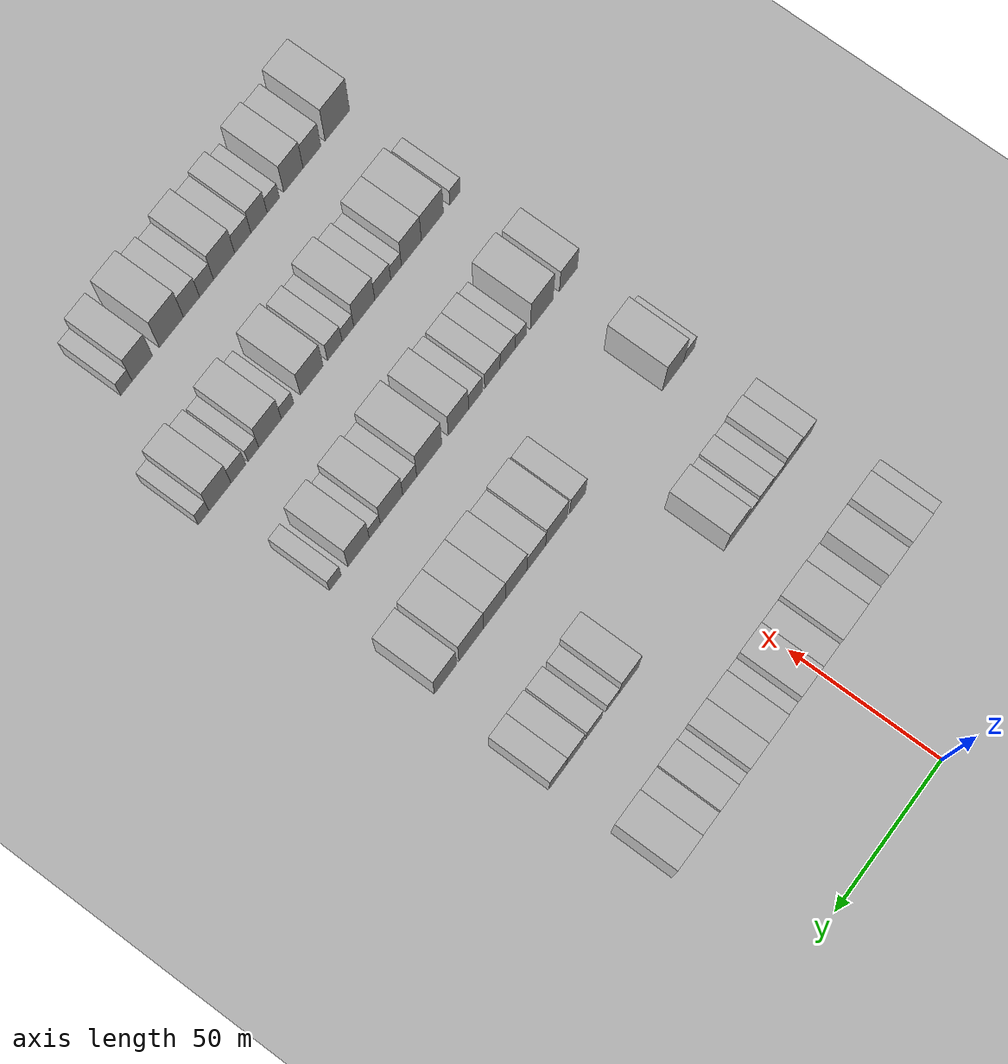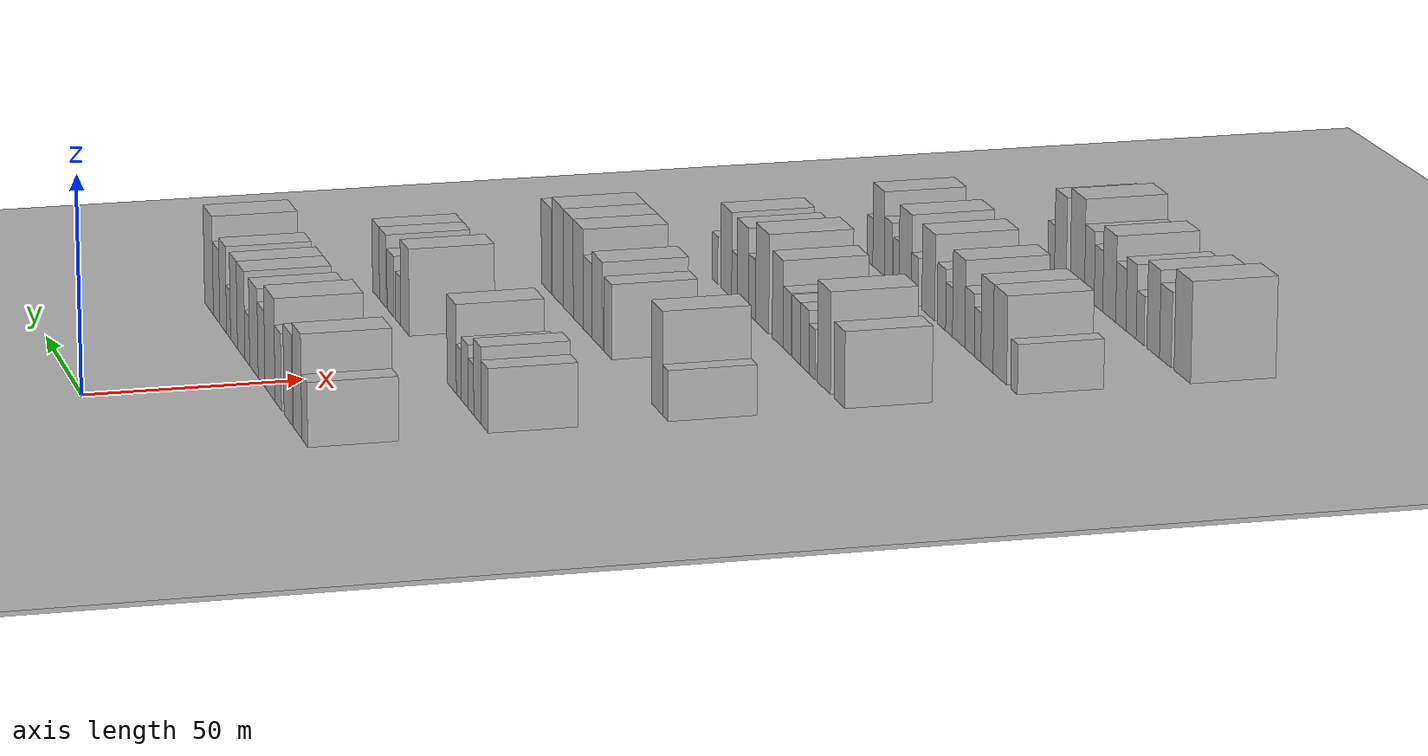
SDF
<sdf version="1.6">
 <world name="default">
  <include><name>ground_plane_1</name><uri>model://HANNAS_ground_plane</uri></include>
  <include>
   <name>ground_plane_2</name>
   <uri>model://HANNAS_ground_plane</uri>
   <pose>100 0 0  0 0 0</pose>
  </include>
  <model name="building_61">
   <static>1</static>
   <pose>50.0000 -51.2786 0 0.000000 0.000000 0.000000</pose>
   <link name="link">
    <pose>0 0 7.50 0 0 0</pose>
    <collision name="collision"><geometry><box><size>20.0000 6.4937 15.0000</size></box></geometry></collision>
    <visual name="visual">
     <cast_shadows>0</cast_shadows>
     <geometry><box><size>20.0000 6.4937 15.0000</size></box></geometry>
     <material>
      <script>
       <uri>model://HANNAS_wall/materials/scripts</uri>
       <uri>model://HANNAS_wall/materials/textures</uri>
       <name>vrc/HANNAS_wall</name>
      </script>
     </material>
    </visual>
   </link>
  </model>
  <model name="building_62">
   <static>1</static>
   <pose>50.0000 -43.2275 0 0.000000 0.000000 0.000000</pose>
   <link name="link">
    <pose>0 0 12.00 0 0 0</pose>
    <collision name="collision"><geometry><box><size>20.0000 9.6084 24.0000</size></box></geometry></collision>
    <visual name="visual">
     <cast_shadows>0</cast_shadows>
     <geometry><box><size>20.0000 9.6084 24.0000</size></box></geometry>
     <material>
      <script>
       <uri>model://HANNAS_wall/materials/scripts</uri>
       <uri>model://HANNAS_wall/materials/textures</uri>
       <name>vrc/HANNAS_wall</name>
      </script>
     </material>
    </visual>
   </link>
  </model>
  <model name="building_63">
   <static>1</static>
   <pose>50.0000 -32.7277 0 0.000000 0.000000 0.000000</pose>
   <link name="link">
    <pose>0 0 10.50 0 0 0</pose>
    <collision name="collision"><geometry><box><size>20.0000 9.3913 21.0000</size></box></geometry></collision>
    <visual name="visual">
     <cast_shadows>0</cast_shadows>
     <geometry><box><size>20.0000 9.3913 21.0000</size></box></geometry>
     <material>
      <script>
       <uri>model://HANNAS_wall/materials/scripts</uri>
       <uri>model://HANNAS_wall/materials/textures</uri>
       <name>vrc/HANNAS_wall</name>
      </script>
     </material>
    </visual>
   </link>
  </model>
  <model name="building_64">
   <static>1</static>
   <pose>50.0000 -21.3808 0 0.000000 0.000000 0.000000</pose>
   <link name="link">
    <pose>0 0 9.00 0 0 0</pose>
    <collision name="collision"><geometry><box><size>20.0000 7.3026 18.0000</size></box></geometry></collision>
    <visual name="visual">
     <cast_shadows>0</cast_shadows>
     <geometry><box><size>20.0000 7.3026 18.0000</size></box></geometry>
     <material>
      <script>
       <uri>model://HANNAS_wall/materials/scripts</uri>
       <uri>model://HANNAS_wall/materials/textures</uri>
       <name>vrc/HANNAS_wall</name>
      </script>
     </material>
    </visual>
   </link>
  </model>
  <model name="building_65">
   <static>1</static>
   <pose>50.0000 -11.8278 0 0.000000 0.000000 0.000000</pose>
   <link name="link">
    <pose>0 0 12.00 0 0 0</pose>
    <collision name="collision"><geometry><box><size>20.0000 11.8033 24.0000</size></box></geometry></collision>
    <visual name="visual">
     <cast_shadows>0</cast_shadows>
     <geometry><box><size>20.0000 11.8033 24.0000</size></box></geometry>
     <material>
      <script>
       <uri>model://HANNAS_wall/materials/scripts</uri>
       <uri>model://HANNAS_wall/materials/textures</uri>
       <name>vrc/HANNAS_wall</name>
      </script>
     </material>
    </visual>
   </link>
  </model>
  <model name="building_66">
   <static>1</static>
   <pose>50.0000 -1.8466 0 0.000000 0.000000 0.000000</pose>
   <link name="link">
    <pose>0 0 9.00 0 0 0</pose>
    <collision name="collision"><geometry><box><size>20.0000 8.1591 18.0000</size></box></geometry></collision>
    <visual name="visual">
     <cast_shadows>0</cast_shadows>
     <geometry><box><size>20.0000 8.1591 18.0000</size></box></geometry>
     <material>
      <script>
       <uri>model://HANNAS_wall/materials/scripts</uri>
       <uri>model://HANNAS_wall/materials/textures</uri>
       <name>vrc/HANNAS_wall</name>
      </script>
     </material>
    </visual>
   </link>
  </model>
  <model name="building_67">
   <static>1</static>
   <pose>50.0000 7.2440 0 0.000000 0.000000 0.000000</pose>
   <link name="link">
    <pose>0 0 10.50 0 0 0</pose>
    <collision name="collision"><geometry><box><size>20.0000 10.0220 21.0000</size></box></geometry></collision>
    <visual name="visual">
     <cast_shadows>0</cast_shadows>
     <geometry><box><size>20.0000 10.0220 21.0000</size></box></geometry>
     <material>
      <script>
       <uri>model://HANNAS_wall/materials/scripts</uri>
       <uri>model://HANNAS_wall/materials/textures</uri>
       <name>vrc/HANNAS_wall</name>
      </script>
     </material>
    </visual>
   </link>
  </model>
  <model name="building_68">
   <static>1</static>
   <pose>50.0000 15.1248 0 0.000000 0.000000 0.000000</pose>
   <link name="link">
    <pose>0 0 6.00 0 0 0</pose>
    <collision name="collision"><geometry><box><size>20.0000 5.7396 12.0000</size></box></geometry></collision>
    <visual name="visual">
     <cast_shadows>0</cast_shadows>
     <geometry><box><size>20.0000 5.7396 12.0000</size></box></geometry>
     <material>
      <script>
       <uri>model://HANNAS_wall/materials/scripts</uri>
       <uri>model://HANNAS_wall/materials/textures</uri>
       <name>vrc/HANNAS_wall</name>
      </script>
     </material>
    </visual>
   </link>
  </model>
  <model name="building_69">
   <static>1</static>
   <pose>50.0000 22.6059 0 0.000000 0.000000 0.000000</pose>
   <link name="link">
    <pose>0 0 10.50 0 0 0</pose>
    <collision name="collision"><geometry><box><size>20.0000 9.2225 21.0000</size></box></geometry></collision>
    <visual name="visual">
     <cast_shadows>0</cast_shadows>
     <geometry><box><size>20.0000 9.2225 21.0000</size></box></geometry>
     <material>
      <script>
       <uri>model://HANNAS_wall/materials/scripts</uri>
       <uri>model://HANNAS_wall/materials/textures</uri>
       <name>vrc/HANNAS_wall</name>
      </script>
     </material>
    </visual>
   </link>
  </model>
  <model name="building_70">
   <static>1</static>
   <pose>50.0000 31.4374 0 0.000000 0.000000 0.000000</pose>
   <link name="link">
    <pose>0 0 10.50 0 0 0</pose>
    <collision name="collision"><geometry><box><size>20.0000 8.4405 21.0000</size></box></geometry></collision>
    <visual name="visual">
     <cast_shadows>0</cast_shadows>
     <geometry><box><size>20.0000 8.4405 21.0000</size></box></geometry>
     <material>
      <script>
       <uri>model://HANNAS_wall/materials/scripts</uri>
       <uri>model://HANNAS_wall/materials/textures</uri>
       <name>vrc/HANNAS_wall</name>
      </script>
     </material>
    </visual>
   </link>
  </model>
  <model name="building_71">
   <static>1</static>
   <pose>50.0000 38.1519 0 0.000000 0.000000 0.000000</pose>
   <link name="link">
    <pose>0 0 6.00 0 0 0</pose>
    <collision name="collision"><geometry><box><size>20.0000 4.9886 12.0000</size></box></geometry></collision>
    <visual name="visual">
     <cast_shadows>0</cast_shadows>
     <geometry><box><size>20.0000 4.9886 12.0000</size></box></geometry>
     <material>
      <script>
       <uri>model://HANNAS_wall/materials/scripts</uri>
       <uri>model://HANNAS_wall/materials/textures</uri>
       <name>vrc/HANNAS_wall</name>
      </script>
     </material>
    </visual>
   </link>
  </model>
  <model name="building_72">
   <static>1</static>
   <pose>50.0000 44.9100 0 0.000000 0.000000 0.000000</pose>
   <link name="link">
    <pose>0 0 10.50 0 0 0</pose>
    <collision name="collision"><geometry><box><size>20.0000 8.5276 21.0000</size></box></geometry></collision>
    <visual name="visual">
     <cast_shadows>0</cast_shadows>
     <geometry><box><size>20.0000 8.5276 21.0000</size></box></geometry>
     <material>
      <script>
       <uri>model://HANNAS_wall/materials/scripts</uri>
       <uri>model://HANNAS_wall/materials/textures</uri>
       <name>vrc/HANNAS_wall</name>
      </script>
     </material>
    </visual>
   </link>
  </model>
  <model name="building_73">
   <static>1</static>
   <pose>50.0000 53.2318 0 0.000000 0.000000 0.000000</pose>
   <link name="link">
    <pose>0 0 9.00 0 0 0</pose>
    <collision name="collision"><geometry><box><size>20.0000 8.1159 18.0000</size></box></geometry></collision>
    <visual name="visual">
     <cast_shadows>0</cast_shadows>
     <geometry><box><size>20.0000 8.1159 18.0000</size></box></geometry>
     <material>
      <script>
       <uri>model://HANNAS_wall/materials/scripts</uri>
       <uri>model://HANNAS_wall/materials/textures</uri>
       <name>vrc/HANNAS_wall</name>
      </script>
     </material>
    </visual>
   </link>
  </model>
  <model name="building_74">
   <static>1</static>
   <pose>50.0000 62.9190 0 0.000000 0.000000 0.000000</pose>
   <link name="link">
    <pose>0 0 12.00 0 0 0</pose>
    <collision name="collision"><geometry><box><size>20.0000 11.2583 24.0000</size></box></geometry></collision>
    <visual name="visual">
     <cast_shadows>0</cast_shadows>
     <geometry><box><size>20.0000 11.2583 24.0000</size></box></geometry>
     <material>
      <script>
       <uri>model://HANNAS_wall/materials/scripts</uri>
       <uri>model://HANNAS_wall/materials/textures</uri>
       <name>vrc/HANNAS_wall</name>
      </script>
     </material>
    </visual>
   </link>
  </model>
  <model name="building_197">
   <static>1</static>
   <pose>90.0000 -49.8313 0 0.000000 0.000000 0.000000</pose>
   <link name="link">
    <pose>0 0 7.50 0 0 0</pose>
    <collision name="collision"><geometry><box><size>20.0000 6.9212 15.0000</size></box></geometry></collision>
    <visual name="visual">
     <cast_shadows>0</cast_shadows>
     <geometry><box><size>20.0000 6.9212 15.0000</size></box></geometry>
     <material>
      <script>
       <uri>model://HANNAS_wall/materials/scripts</uri>
       <uri>model://HANNAS_wall/materials/textures</uri>
       <name>vrc/HANNAS_wall</name>
      </script>
     </material>
    </visual>
   </link>
  </model>
  <model name="building_198">
   <static>1</static>
   <pose>90.0000 -42.6922 0 0.000000 0.000000 0.000000</pose>
   <link name="link">
    <pose>0 0 9.00 0 0 0</pose>
    <collision name="collision"><geometry><box><size>20.0000 7.3571 18.0000</size></box></geometry></collision>
    <visual name="visual">
     <cast_shadows>0</cast_shadows>
     <geometry><box><size>20.0000 7.3571 18.0000</size></box></geometry>
     <material>
      <script>
       <uri>model://HANNAS_wall/materials/scripts</uri>
       <uri>model://HANNAS_wall/materials/textures</uri>
       <name>vrc/HANNAS_wall</name>
      </script>
     </material>
    </visual>
   </link>
  </model>
  <model name="building_199">
   <static>1</static>
   <pose>90.0000 -36.2516 0 0.000000 0.000000 0.000000</pose>
   <link name="link">
    <pose>0 0 6.00 0 0 0</pose>
    <collision name="collision"><geometry><box><size>20.0000 5.5241 12.0000</size></box></geometry></collision>
    <visual name="visual">
     <cast_shadows>0</cast_shadows>
     <geometry><box><size>20.0000 5.5241 12.0000</size></box></geometry>
     <material>
      <script>
       <uri>model://HANNAS_wall/materials/scripts</uri>
       <uri>model://HANNAS_wall/materials/textures</uri>
       <name>vrc/HANNAS_wall</name>
      </script>
     </material>
    </visual>
   </link>
  </model>
  <model name="building_200">
   <static>1</static>
   <pose>90.0000 -30.0562 0 0.000000 0.000000 0.000000</pose>
   <link name="link">
    <pose>0 0 7.50 0 0 0</pose>
    <collision name="collision"><geometry><box><size>20.0000 6.8667 15.0000</size></box></geometry></collision>
    <visual name="visual">
     <cast_shadows>0</cast_shadows>
     <geometry><box><size>20.0000 6.8667 15.0000</size></box></geometry>
     <material>
      <script>
       <uri>model://HANNAS_wall/materials/scripts</uri>
       <uri>model://HANNAS_wall/materials/textures</uri>
       <name>vrc/HANNAS_wall</name>
      </script>
     </material>
    </visual>
   </link>
  </model>
  <model name="building_201">
   <static>1</static>
   <pose>90.0000 -24.0416 0 0.000000 0.000000 0.000000</pose>
   <link name="link">
    <pose>0 0 6.00 0 0 0</pose>
    <collision name="collision"><geometry><box><size>20.0000 5.1624 12.0000</size></box></geometry></collision>
    <visual name="visual">
     <cast_shadows>0</cast_shadows>
     <geometry><box><size>20.0000 5.1624 12.0000</size></box></geometry>
     <material>
      <script>
       <uri>model://HANNAS_wall/materials/scripts</uri>
       <uri>model://HANNAS_wall/materials/textures</uri>
       <name>vrc/HANNAS_wall</name>
      </script>
     </material>
    </visual>
   </link>
  </model>
  <model name="building_202">
   <static>1</static>
   <pose>90.0000 -16.7081 0 0.000000 0.000000 0.000000</pose>
   <link name="link">
    <pose>0 0 10.50 0 0 0</pose>
    <collision name="collision"><geometry><box><size>20.0000 9.5047 21.0000</size></box></geometry></collision>
    <visual name="visual">
     <cast_shadows>0</cast_shadows>
     <geometry><box><size>20.0000 9.5047 21.0000</size></box></geometry>
     <material>
      <script>
       <uri>model://HANNAS_wall/materials/scripts</uri>
       <uri>model://HANNAS_wall/materials/textures</uri>
       <name>vrc/HANNAS_wall</name>
      </script>
     </material>
    </visual>
   </link>
  </model>
  <model name="building_203">
   <static>1</static>
   <pose>90.0000 32.8688 0 0.000000 0.000000 0.000000</pose>
   <link name="link">
    <pose>0 0 10.50 0 0 0</pose>
    <collision name="collision"><geometry><box><size>20.0000 9.2164 21.0000</size></box></geometry></collision>
    <visual name="visual">
     <cast_shadows>0</cast_shadows>
     <geometry><box><size>20.0000 9.2164 21.0000</size></box></geometry>
     <material>
      <script>
       <uri>model://HANNAS_wall/materials/scripts</uri>
       <uri>model://HANNAS_wall/materials/textures</uri>
       <name>vrc/HANNAS_wall</name>
      </script>
     </material>
    </visual>
   </link>
  </model>
  <model name="building_204">
   <static>1</static>
   <pose>90.0000 40.3352 0 0.000000 0.000000 0.000000</pose>
   <link name="link">
    <pose>0 0 6.00 0 0 0</pose>
    <collision name="collision"><geometry><box><size>20.0000 5.7163 12.0000</size></box></geometry></collision>
    <visual name="visual">
     <cast_shadows>0</cast_shadows>
     <geometry><box><size>20.0000 5.7163 12.0000</size></box></geometry>
     <material>
      <script>
       <uri>model://HANNAS_wall/materials/scripts</uri>
       <uri>model://HANNAS_wall/materials/textures</uri>
       <name>vrc/HANNAS_wall</name>
      </script>
     </material>
    </visual>
   </link>
  </model>
  <model name="building_205">
   <static>1</static>
   <pose>90.0000 48.8825 0 0.000000 0.000000 0.000000</pose>
   <link name="link">
    <pose>0 0 7.50 0 0 0</pose>
    <collision name="collision"><geometry><box><size>20.0000 7.3784 15.0000</size></box></geometry></collision>
    <visual name="visual">
     <cast_shadows>0</cast_shadows>
     <geometry><box><size>20.0000 7.3784 15.0000</size></box></geometry>
     <material>
      <script>
       <uri>model://HANNAS_wall/materials/scripts</uri>
       <uri>model://HANNAS_wall/materials/textures</uri>
       <name>vrc/HANNAS_wall</name>
      </script>
     </material>
    </visual>
   </link>
  </model>
  <model name="building_206">
   <static>1</static>
   <pose>90.0000 57.4387 0 0.000000 0.000000 0.000000</pose>
   <link name="link">
    <pose>0 0 9.00 0 0 0</pose>
    <collision name="collision"><geometry><box><size>20.0000 7.7338 18.0000</size></box></geometry></collision>
    <visual name="visual">
     <cast_shadows>0</cast_shadows>
     <geometry><box><size>20.0000 7.7338 18.0000</size></box></geometry>
     <material>
      <script>
       <uri>model://HANNAS_wall/materials/scripts</uri>
       <uri>model://HANNAS_wall/materials/textures</uri>
       <name>vrc/HANNAS_wall</name>
      </script>
     </material>
    </visual>
   </link>
  </model>
  <model name="building_207">
   <static>1</static>
   <pose>90.0000 65.2648 0 0.000000 0.000000 0.000000</pose>
   <link name="link">
    <pose>0 0 9.00 0 0 0</pose>
    <collision name="collision"><geometry><box><size>20.0000 7.9184 18.0000</size></box></geometry></collision>
    <visual name="visual">
     <cast_shadows>0</cast_shadows>
     <geometry><box><size>20.0000 7.9184 18.0000</size></box></geometry>
     <material>
      <script>
       <uri>model://HANNAS_wall/materials/scripts</uri>
       <uri>model://HANNAS_wall/materials/textures</uri>
       <name>vrc/HANNAS_wall</name>
      </script>
     </material>
    </visual>
   </link>
  </model>
  <model name="building_332">
   <static>1</static>
   <pose>130.0000 -51.4464 0 0.000000 0.000000 0.000000</pose>
   <link name="link">
    <pose>0 0 6.00 0 0 0</pose>
    <collision name="collision"><geometry><box><size>20.0000 5.1721 12.0000</size></box></geometry></collision>
    <visual name="visual">
     <cast_shadows>0</cast_shadows>
     <geometry><box><size>20.0000 5.1721 12.0000</size></box></geometry>
     <material>
      <script>
       <uri>model://HANNAS_wall/materials/scripts</uri>
       <uri>model://HANNAS_wall/materials/textures</uri>
       <name>vrc/HANNAS_wall</name>
      </script>
     </material>
    </visual>
   </link>
  </model>
  <model name="building_333">
   <static>1</static>
   <pose>130.0000 -43.8543 0 0.000000 0.000000 0.000000</pose>
   <link name="link">
    <pose>0 0 12.00 0 0 0</pose>
    <collision name="collision"><geometry><box><size>20.0000 10.0120 24.0000</size></box></geometry></collision>
    <visual name="visual">
     <cast_shadows>0</cast_shadows>
     <geometry><box><size>20.0000 10.0120 24.0000</size></box></geometry>
     <material>
      <script>
       <uri>model://HANNAS_wall/materials/scripts</uri>
       <uri>model://HANNAS_wall/materials/textures</uri>
       <name>vrc/HANNAS_wall</name>
      </script>
     </material>
    </visual>
   </link>
  </model>
  <model name="building_334">
   <static>1</static>
   <pose>130.0000 1.2633 0 0.000000 0.000000 0.000000</pose>
   <link name="link">
    <pose>0 0 9.00 0 0 0</pose>
    <collision name="collision"><geometry><box><size>20.0000 7.4078 18.0000</size></box></geometry></collision>
    <visual name="visual">
     <cast_shadows>0</cast_shadows>
     <geometry><box><size>20.0000 7.4078 18.0000</size></box></geometry>
     <material>
      <script>
       <uri>model://HANNAS_wall/materials/scripts</uri>
       <uri>model://HANNAS_wall/materials/textures</uri>
       <name>vrc/HANNAS_wall</name>
      </script>
     </material>
    </visual>
   </link>
  </model>
  <model name="building_335">
   <static>1</static>
   <pose>130.0000 11.0063 0 0.000000 0.000000 0.000000</pose>
   <link name="link">
    <pose>0 0 10.50 0 0 0</pose>
    <collision name="collision"><geometry><box><size>20.0000 10.0782 21.0000</size></box></geometry></collision>
    <visual name="visual">
     <cast_shadows>0</cast_shadows>
     <geometry><box><size>20.0000 10.0782 21.0000</size></box></geometry>
     <material>
      <script>
       <uri>model://HANNAS_wall/materials/scripts</uri>
       <uri>model://HANNAS_wall/materials/textures</uri>
       <name>vrc/HANNAS_wall</name>
      </script>
     </material>
    </visual>
   </link>
  </model>
  <model name="building_336">
   <static>1</static>
   <pose>130.0000 20.3731 0 0.000000 0.000000 0.000000</pose>
   <link name="link">
    <pose>0 0 9.00 0 0 0</pose>
    <collision name="collision"><geometry><box><size>20.0000 8.6555 18.0000</size></box></geometry></collision>
    <visual name="visual">
     <cast_shadows>0</cast_shadows>
     <geometry><box><size>20.0000 8.6555 18.0000</size></box></geometry>
     <material>
      <script>
       <uri>model://HANNAS_wall/materials/scripts</uri>
       <uri>model://HANNAS_wall/materials/textures</uri>
       <name>vrc/HANNAS_wall</name>
      </script>
     </material>
    </visual>
   </link>
  </model>
  <model name="building_337">
   <static>1</static>
   <pose>130.0000 29.6006 0 0.000000 0.000000 0.000000</pose>
   <link name="link">
    <pose>0 0 12.00 0 0 0</pose>
    <collision name="collision"><geometry><box><size>20.0000 9.7996 24.0000</size></box></geometry></collision>
    <visual name="visual">
     <cast_shadows>0</cast_shadows>
     <geometry><box><size>20.0000 9.7996 24.0000</size></box></geometry>
     <material>
      <script>
       <uri>model://HANNAS_wall/materials/scripts</uri>
       <uri>model://HANNAS_wall/materials/textures</uri>
       <name>vrc/HANNAS_wall</name>
      </script>
     </material>
    </visual>
   </link>
  </model>
  <model name="building_338">
   <static>1</static>
   <pose>130.0000 39.4902 0 0.000000 0.000000 0.000000</pose>
   <link name="link">
    <pose>0 0 12.00 0 0 0</pose>
    <collision name="collision"><geometry><box><size>20.0000 9.9796 24.0000</size></box></geometry></collision>
    <visual name="visual">
     <cast_shadows>0</cast_shadows>
     <geometry><box><size>20.0000 9.9796 24.0000</size></box></geometry>
     <material>
      <script>
       <uri>model://HANNAS_wall/materials/scripts</uri>
       <uri>model://HANNAS_wall/materials/textures</uri>
       <name>vrc/HANNAS_wall</name>
      </script>
     </material>
    </visual>
   </link>
  </model>
  <model name="building_339">
   <static>1</static>
   <pose>130.0000 50.0863 0 0.000000 0.000000 0.000000</pose>
   <link name="link">
    <pose>0 0 12.00 0 0 0</pose>
    <collision name="collision"><geometry><box><size>20.0000 11.2127 24.0000</size></box></geometry></collision>
    <visual name="visual">
     <cast_shadows>0</cast_shadows>
     <geometry><box><size>20.0000 11.2127 24.0000</size></box></geometry>
     <material>
      <script>
       <uri>model://HANNAS_wall/materials/scripts</uri>
       <uri>model://HANNAS_wall/materials/textures</uri>
       <name>vrc/HANNAS_wall</name>
      </script>
     </material>
    </visual>
   </link>
  </model>
  <model name="building_340">
   <static>1</static>
   <pose>130.0000 61.6865 0 0.000000 0.000000 0.000000</pose>
   <link name="link">
    <pose>0 0 10.50 0 0 0</pose>
    <collision name="collision"><geometry><box><size>20.0000 9.9877 21.0000</size></box></geometry></collision>
    <visual name="visual">
     <cast_shadows>0</cast_shadows>
     <geometry><box><size>20.0000 9.9877 21.0000</size></box></geometry>
     <material>
      <script>
       <uri>model://HANNAS_wall/materials/scripts</uri>
       <uri>model://HANNAS_wall/materials/textures</uri>
       <name>vrc/HANNAS_wall</name>
      </script>
     </material>
    </visual>
   </link>
  </model>
  <model name="building_468">
   <static>1</static>
   <pose>170.0000 -49.3531 0 0.000000 0.000000 0.000000</pose>
   <link name="link">
    <pose>0 0 9.00 0 0 0</pose>
    <collision name="collision"><geometry><box><size>20.0000 8.5105 18.0000</size></box></geometry></collision>
    <visual name="visual">
     <cast_shadows>0</cast_shadows>
     <geometry><box><size>20.0000 8.5105 18.0000</size></box></geometry>
     <material>
      <script>
       <uri>model://HANNAS_wall/materials/scripts</uri>
       <uri>model://HANNAS_wall/materials/textures</uri>
       <name>vrc/HANNAS_wall</name>
      </script>
     </material>
    </visual>
   </link>
  </model>
  <model name="building_469">
   <static>1</static>
   <pose>170.0000 -36.7250 0 0.000000 0.000000 0.000000</pose>
   <link name="link">
    <pose>0 0 12.00 0 0 0</pose>
    <collision name="collision"><geometry><box><size>20.0000 10.7457 24.0000</size></box></geometry></collision>
    <visual name="visual">
     <cast_shadows>0</cast_shadows>
     <geometry><box><size>20.0000 10.7457 24.0000</size></box></geometry>
     <material>
      <script>
       <uri>model://HANNAS_wall/materials/scripts</uri>
       <uri>model://HANNAS_wall/materials/textures</uri>
       <name>vrc/HANNAS_wall</name>
      </script>
     </material>
    </visual>
   </link>
  </model>
  <model name="building_470">
   <static>1</static>
   <pose>170.0000 -26.8215 0 0.000000 0.000000 0.000000</pose>
   <link name="link">
    <pose>0 0 6.00 0 0 0</pose>
    <collision name="collision"><geometry><box><size>20.0000 5.0614 12.0000</size></box></geometry></collision>
    <visual name="visual">
     <cast_shadows>0</cast_shadows>
     <geometry><box><size>20.0000 5.0614 12.0000</size></box></geometry>
     <material>
      <script>
       <uri>model://HANNAS_wall/materials/scripts</uri>
       <uri>model://HANNAS_wall/materials/textures</uri>
       <name>vrc/HANNAS_wall</name>
      </script>
     </material>
    </visual>
   </link>
  </model>
  <model name="building_471">
   <static>1</static>
   <pose>170.0000 -20.7169 0 0.000000 0.000000 0.000000</pose>
   <link name="link">
    <pose>0 0 7.50 0 0 0</pose>
    <collision name="collision"><geometry><box><size>20.0000 7.1477 15.0000</size></box></geometry></collision>
    <visual name="visual">
     <cast_shadows>0</cast_shadows>
     <geometry><box><size>20.0000 7.1477 15.0000</size></box></geometry>
     <material>
      <script>
       <uri>model://HANNAS_wall/materials/scripts</uri>
       <uri>model://HANNAS_wall/materials/textures</uri>
       <name>vrc/HANNAS_wall</name>
      </script>
     </material>
    </visual>
   </link>
  </model>
  <model name="building_472">
   <static>1</static>
   <pose>170.0000 -13.5428 0 0.000000 0.000000 0.000000</pose>
   <link name="link">
    <pose>0 0 7.50 0 0 0</pose>
    <collision name="collision"><geometry><box><size>20.0000 7.2004 15.0000</size></box></geometry></collision>
    <visual name="visual">
     <cast_shadows>0</cast_shadows>
     <geometry><box><size>20.0000 7.2004 15.0000</size></box></geometry>
     <material>
      <script>
       <uri>model://HANNAS_wall/materials/scripts</uri>
       <uri>model://HANNAS_wall/materials/textures</uri>
       <name>vrc/HANNAS_wall</name>
      </script>
     </material>
    </visual>
   </link>
  </model>
  <model name="building_473">
   <static>1</static>
   <pose>170.0000 -5.7261 0 0.000000 0.000000 0.000000</pose>
   <link name="link">
    <pose>0 0 7.50 0 0 0</pose>
    <collision name="collision"><geometry><box><size>20.0000 6.4331 15.0000</size></box></geometry></collision>
    <visual name="visual">
     <cast_shadows>0</cast_shadows>
     <geometry><box><size>20.0000 6.4331 15.0000</size></box></geometry>
     <material>
      <script>
       <uri>model://HANNAS_wall/materials/scripts</uri>
       <uri>model://HANNAS_wall/materials/textures</uri>
       <name>vrc/HANNAS_wall</name>
      </script>
     </material>
    </visual>
   </link>
  </model>
  <model name="building_474">
   <static>1</static>
   <pose>170.0000 2.1801 0 0.000000 0.000000 0.000000</pose>
   <link name="link">
    <pose>0 0 10.50 0 0 0</pose>
    <collision name="collision"><geometry><box><size>20.0000 9.3794 21.0000</size></box></geometry></collision>
    <visual name="visual">
     <cast_shadows>0</cast_shadows>
     <geometry><box><size>20.0000 9.3794 21.0000</size></box></geometry>
     <material>
      <script>
       <uri>model://HANNAS_wall/materials/scripts</uri>
       <uri>model://HANNAS_wall/materials/textures</uri>
       <name>vrc/HANNAS_wall</name>
      </script>
     </material>
    </visual>
   </link>
  </model>
  <model name="building_475">
   <static>1</static>
   <pose>170.0000 15.6229 0 0.000000 0.000000 0.000000</pose>
   <link name="link">
    <pose>0 0 12.00 0 0 0</pose>
    <collision name="collision"><geometry><box><size>20.0000 11.5062 24.0000</size></box></geometry></collision>
    <visual name="visual">
     <cast_shadows>0</cast_shadows>
     <geometry><box><size>20.0000 11.5062 24.0000</size></box></geometry>
     <material>
      <script>
       <uri>model://HANNAS_wall/materials/scripts</uri>
       <uri>model://HANNAS_wall/materials/textures</uri>
       <name>vrc/HANNAS_wall</name>
      </script>
     </material>
    </visual>
   </link>
  </model>
  <model name="building_476">
   <static>1</static>
   <pose>170.0000 24.5911 0 0.000000 0.000000 0.000000</pose>
   <link name="link">
    <pose>0 0 7.50 0 0 0</pose>
    <collision name="collision"><geometry><box><size>20.0000 6.4304 15.0000</size></box></geometry></collision>
    <visual name="visual">
     <cast_shadows>0</cast_shadows>
     <geometry><box><size>20.0000 6.4304 15.0000</size></box></geometry>
     <material>
      <script>
       <uri>model://HANNAS_wall/materials/scripts</uri>
       <uri>model://HANNAS_wall/materials/textures</uri>
       <name>vrc/HANNAS_wall</name>
      </script>
     </material>
    </visual>
   </link>
  </model>
  <model name="building_477">
   <static>1</static>
   <pose>170.0000 32.8955 0 0.000000 0.000000 0.000000</pose>
   <link name="link">
    <pose>0 0 10.50 0 0 0</pose>
    <collision name="collision"><geometry><box><size>20.0000 10.1783 21.0000</size></box></geometry></collision>
    <visual name="visual">
     <cast_shadows>0</cast_shadows>
     <geometry><box><size>20.0000 10.1783 21.0000</size></box></geometry>
     <material>
      <script>
       <uri>model://HANNAS_wall/materials/scripts</uri>
       <uri>model://HANNAS_wall/materials/textures</uri>
       <name>vrc/HANNAS_wall</name>
      </script>
     </material>
    </visual>
   </link>
  </model>
  <model name="building_478">
   <static>1</static>
   <pose>170.0000 40.4680 0 0.000000 0.000000 0.000000</pose>
   <link name="link">
    <pose>0 0 6.00 0 0 0</pose>
    <collision name="collision"><geometry><box><size>20.0000 4.9666 12.0000</size></box></geometry></collision>
    <visual name="visual">
     <cast_shadows>0</cast_shadows>
     <geometry><box><size>20.0000 4.9666 12.0000</size></box></geometry>
     <material>
      <script>
       <uri>model://HANNAS_wall/materials/scripts</uri>
       <uri>model://HANNAS_wall/materials/textures</uri>
       <name>vrc/HANNAS_wall</name>
      </script>
     </material>
    </visual>
   </link>
  </model>
  <model name="building_479">
   <static>1</static>
   <pose>170.0000 47.8065 0 0.000000 0.000000 0.000000</pose>
   <link name="link">
    <pose>0 0 10.50 0 0 0</pose>
    <collision name="collision"><geometry><box><size>20.0000 9.7104 21.0000</size></box></geometry></collision>
    <visual name="visual">
     <cast_shadows>0</cast_shadows>
     <geometry><box><size>20.0000 9.7104 21.0000</size></box></geometry>
     <material>
      <script>
       <uri>model://HANNAS_wall/materials/scripts</uri>
       <uri>model://HANNAS_wall/materials/textures</uri>
       <name>vrc/HANNAS_wall</name>
      </script>
     </material>
    </visual>
   </link>
  </model>
  <model name="building_480">
   <static>1</static>
   <pose>170.0000 58.3028 0 0.000000 0.000000 0.000000</pose>
   <link name="link">
    <pose>0 0 6.00 0 0 0</pose>
    <collision name="collision"><geometry><box><size>20.0000 5.2823 12.0000</size></box></geometry></collision>
    <visual name="visual">
     <cast_shadows>0</cast_shadows>
     <geometry><box><size>20.0000 5.2823 12.0000</size></box></geometry>
     <material>
      <script>
       <uri>model://HANNAS_wall/materials/scripts</uri>
       <uri>model://HANNAS_wall/materials/textures</uri>
       <name>vrc/HANNAS_wall</name>
      </script>
     </material>
    </visual>
   </link>
  </model>
  <model name="building_607">
   <static>1</static>
   <pose>210.0000 -49.8232 0 0.000000 0.000000 0.000000</pose>
   <link name="link">
    <pose>0 0 6.00 0 0 0</pose>
    <collision name="collision"><geometry><box><size>20.0000 4.9857 12.0000</size></box></geometry></collision>
    <visual name="visual">
     <cast_shadows>0</cast_shadows>
     <geometry><box><size>20.0000 4.9857 12.0000</size></box></geometry>
     <material>
      <script>
       <uri>model://HANNAS_wall/materials/scripts</uri>
       <uri>model://HANNAS_wall/materials/textures</uri>
       <name>vrc/HANNAS_wall</name>
      </script>
     </material>
    </visual>
   </link>
  </model>
  <model name="building_608">
   <static>1</static>
   <pose>210.0000 -39.1689 0 0.000000 0.000000 0.000000</pose>
   <link name="link">
    <pose>0 0 10.50 0 0 0</pose>
    <collision name="collision"><geometry><box><size>20.0000 10.3229 21.0000</size></box></geometry></collision>
    <visual name="visual">
     <cast_shadows>0</cast_shadows>
     <geometry><box><size>20.0000 10.3229 21.0000</size></box></geometry>
     <material>
      <script>
       <uri>model://HANNAS_wall/materials/scripts</uri>
       <uri>model://HANNAS_wall/materials/textures</uri>
       <name>vrc/HANNAS_wall</name>
      </script>
     </material>
    </visual>
   </link>
  </model>
  <model name="building_609">
   <static>1</static>
   <pose>210.0000 -29.3553 0 0.000000 0.000000 0.000000</pose>
   <link name="link">
    <pose>0 0 10.50 0 0 0</pose>
    <collision name="collision"><geometry><box><size>20.0000 9.3043 21.0000</size></box></geometry></collision>
    <visual name="visual">
     <cast_shadows>0</cast_shadows>
     <geometry><box><size>20.0000 9.3043 21.0000</size></box></geometry>
     <material>
      <script>
       <uri>model://HANNAS_wall/materials/scripts</uri>
       <uri>model://HANNAS_wall/materials/textures</uri>
       <name>vrc/HANNAS_wall</name>
      </script>
     </material>
    </visual>
   </link>
  </model>
  <model name="building_610">
   <static>1</static>
   <pose>210.0000 -22.1880 0 0.000000 0.000000 0.000000</pose>
   <link name="link">
    <pose>0 0 6.00 0 0 0</pose>
    <collision name="collision"><geometry><box><size>20.0000 5.0302 12.0000</size></box></geometry></collision>
    <visual name="visual">
     <cast_shadows>0</cast_shadows>
     <geometry><box><size>20.0000 5.0302 12.0000</size></box></geometry>
     <material>
      <script>
       <uri>model://HANNAS_wall/materials/scripts</uri>
       <uri>model://HANNAS_wall/materials/textures</uri>
       <name>vrc/HANNAS_wall</name>
      </script>
     </material>
    </visual>
   </link>
  </model>
  <model name="building_611">
   <static>1</static>
   <pose>210.0000 -15.9890 0 0.000000 0.000000 0.000000</pose>
   <link name="link">
    <pose>0 0 7.50 0 0 0</pose>
    <collision name="collision"><geometry><box><size>20.0000 7.3678 15.0000</size></box></geometry></collision>
    <visual name="visual">
     <cast_shadows>0</cast_shadows>
     <geometry><box><size>20.0000 7.3678 15.0000</size></box></geometry>
     <material>
      <script>
       <uri>model://HANNAS_wall/materials/scripts</uri>
       <uri>model://HANNAS_wall/materials/textures</uri>
       <name>vrc/HANNAS_wall</name>
      </script>
     </material>
    </visual>
   </link>
  </model>
  <model name="building_612">
   <static>1</static>
   <pose>210.0000 -7.4467 0 0.000000 0.000000 0.000000</pose>
   <link name="link">
    <pose>0 0 10.50 0 0 0</pose>
    <collision name="collision"><geometry><box><size>20.0000 9.7167 21.0000</size></box></geometry></collision>
    <visual name="visual">
     <cast_shadows>0</cast_shadows>
     <geometry><box><size>20.0000 9.7167 21.0000</size></box></geometry>
     <material>
      <script>
       <uri>model://HANNAS_wall/materials/scripts</uri>
       <uri>model://HANNAS_wall/materials/textures</uri>
       <name>vrc/HANNAS_wall</name>
      </script>
     </material>
    </visual>
   </link>
  </model>
  <model name="building_613">
   <static>1</static>
   <pose>210.0000 0.1003 0 0.000000 0.000000 0.000000</pose>
   <link name="link">
    <pose>0 0 6.00 0 0 0</pose>
    <collision name="collision"><geometry><box><size>20.0000 5.3773 12.0000</size></box></geometry></collision>
    <visual name="visual">
     <cast_shadows>0</cast_shadows>
     <geometry><box><size>20.0000 5.3773 12.0000</size></box></geometry>
     <material>
      <script>
       <uri>model://HANNAS_wall/materials/scripts</uri>
       <uri>model://HANNAS_wall/materials/textures</uri>
       <name>vrc/HANNAS_wall</name>
      </script>
     </material>
    </visual>
   </link>
  </model>
  <model name="building_614">
   <static>1</static>
   <pose>210.0000 6.1606 0 0.000000 0.000000 0.000000</pose>
   <link name="link">
    <pose>0 0 7.50 0 0 0</pose>
    <collision name="collision"><geometry><box><size>20.0000 6.7434 15.0000</size></box></geometry></collision>
    <visual name="visual">
     <cast_shadows>0</cast_shadows>
     <geometry><box><size>20.0000 6.7434 15.0000</size></box></geometry>
     <material>
      <script>
       <uri>model://HANNAS_wall/materials/scripts</uri>
       <uri>model://HANNAS_wall/materials/textures</uri>
       <name>vrc/HANNAS_wall</name>
      </script>
     </material>
    </visual>
   </link>
  </model>
  <model name="building_615">
   <static>1</static>
   <pose>210.0000 16.7147 0 0.000000 0.000000 0.000000</pose>
   <link name="link">
    <pose>0 0 10.50 0 0 0</pose>
    <collision name="collision"><geometry><box><size>20.0000 10.3647 21.0000</size></box></geometry></collision>
    <visual name="visual">
     <cast_shadows>0</cast_shadows>
     <geometry><box><size>20.0000 10.3647 21.0000</size></box></geometry>
     <material>
      <script>
       <uri>model://HANNAS_wall/materials/scripts</uri>
       <uri>model://HANNAS_wall/materials/textures</uri>
       <name>vrc/HANNAS_wall</name>
      </script>
     </material>
    </visual>
   </link>
  </model>
  <model name="building_616">
   <static>1</static>
   <pose>210.0000 27.7029 0 0.000000 0.000000 0.000000</pose>
   <link name="link">
    <pose>0 0 6.00 0 0 0</pose>
    <collision name="collision"><geometry><box><size>20.0000 5.6116 12.0000</size></box></geometry></collision>
    <visual name="visual">
     <cast_shadows>0</cast_shadows>
     <geometry><box><size>20.0000 5.6116 12.0000</size></box></geometry>
     <material>
      <script>
       <uri>model://HANNAS_wall/materials/scripts</uri>
       <uri>model://HANNAS_wall/materials/textures</uri>
       <name>vrc/HANNAS_wall</name>
      </script>
     </material>
    </visual>
   </link>
  </model>
  <model name="building_617">
   <static>1</static>
   <pose>210.0000 35.6207 0 0.000000 0.000000 0.000000</pose>
   <link name="link">
    <pose>0 0 10.50 0 0 0</pose>
    <collision name="collision"><geometry><box><size>20.0000 10.2239 21.0000</size></box></geometry></collision>
    <visual name="visual">
     <cast_shadows>0</cast_shadows>
     <geometry><box><size>20.0000 10.2239 21.0000</size></box></geometry>
     <material>
      <script>
       <uri>model://HANNAS_wall/materials/scripts</uri>
       <uri>model://HANNAS_wall/materials/textures</uri>
       <name>vrc/HANNAS_wall</name>
      </script>
     </material>
    </visual>
   </link>
  </model>
  <model name="building_618">
   <static>1</static>
   <pose>210.0000 43.1586 0 0.000000 0.000000 0.000000</pose>
   <link name="link">
    <pose>0 0 6.00 0 0 0</pose>
    <collision name="collision"><geometry><box><size>20.0000 4.8520 12.0000</size></box></geometry></collision>
    <visual name="visual">
     <cast_shadows>0</cast_shadows>
     <geometry><box><size>20.0000 4.8520 12.0000</size></box></geometry>
     <material>
      <script>
       <uri>model://HANNAS_wall/materials/scripts</uri>
       <uri>model://HANNAS_wall/materials/textures</uri>
       <name>vrc/HANNAS_wall</name>
      </script>
     </material>
    </visual>
   </link>
  </model>
  <model name="building_619">
   <static>1</static>
   <pose>210.0000 49.8881 0 0.000000 0.000000 0.000000</pose>
   <link name="link">
    <pose>0 0 7.50 0 0 0</pose>
    <collision name="collision"><geometry><box><size>20.0000 6.6069 15.0000</size></box></geometry></collision>
    <visual name="visual">
     <cast_shadows>0</cast_shadows>
     <geometry><box><size>20.0000 6.6069 15.0000</size></box></geometry>
     <material>
      <script>
       <uri>model://HANNAS_wall/materials/scripts</uri>
       <uri>model://HANNAS_wall/materials/textures</uri>
       <name>vrc/HANNAS_wall</name>
      </script>
     </material>
    </visual>
   </link>
  </model>
  <model name="building_620">
   <static>1</static>
   <pose>210.0000 58.0679 0 0.000000 0.000000 0.000000</pose>
   <link name="link">
    <pose>0 0 10.50 0 0 0</pose>
    <collision name="collision"><geometry><box><size>20.0000 9.7527 21.0000</size></box></geometry></collision>
    <visual name="visual">
     <cast_shadows>0</cast_shadows>
     <geometry><box><size>20.0000 9.7527 21.0000</size></box></geometry>
     <material>
      <script>
       <uri>model://HANNAS_wall/materials/scripts</uri>
       <uri>model://HANNAS_wall/materials/textures</uri>
       <name>vrc/HANNAS_wall</name>
      </script>
     </material>
    </visual>
   </link>
  </model>
  <model name="building_621">
   <static>1</static>
   <pose>210.0000 65.3500 0 0.000000 0.000000 0.000000</pose>
   <link name="link">
    <pose>0 0 6.00 0 0 0</pose>
    <collision name="collision"><geometry><box><size>20.0000 4.8116 12.0000</size></box></geometry></collision>
    <visual name="visual">
     <cast_shadows>0</cast_shadows>
     <geometry><box><size>20.0000 4.8116 12.0000</size></box></geometry>
     <material>
      <script>
       <uri>model://HANNAS_wall/materials/scripts</uri>
       <uri>model://HANNAS_wall/materials/textures</uri>
       <name>vrc/HANNAS_wall</name>
      </script>
     </material>
    </visual>
   </link>
  </model>
  <model name="building_742">
   <static>1</static>
   <pose>250.0000 -47.4019 0 0.000000 0.000000 0.000000</pose>
   <link name="link">
    <pose>0 0 12.00 0 0 0</pose>
    <collision name="collision"><geometry><box><size>20.0000 11.4859 24.0000</size></box></geometry></collision>
    <visual name="visual">
     <cast_shadows>0</cast_shadows>
     <geometry><box><size>20.0000 11.4859 24.0000</size></box></geometry>
     <material>
      <script>
       <uri>model://HANNAS_wall/materials/scripts</uri>
       <uri>model://HANNAS_wall/materials/textures</uri>
       <name>vrc/HANNAS_wall</name>
      </script>
     </material>
    </visual>
   </link>
  </model>
  <model name="building_743">
   <static>1</static>
   <pose>250.0000 -35.5372 0 0.000000 0.000000 0.000000</pose>
   <link name="link">
    <pose>0 0 9.00 0 0 0</pose>
    <collision name="collision"><geometry><box><size>20.0000 8.2436 18.0000</size></box></geometry></collision>
    <visual name="visual">
     <cast_shadows>0</cast_shadows>
     <geometry><box><size>20.0000 8.2436 18.0000</size></box></geometry>
     <material>
      <script>
       <uri>model://HANNAS_wall/materials/scripts</uri>
       <uri>model://HANNAS_wall/materials/textures</uri>
       <name>vrc/HANNAS_wall</name>
      </script>
     </material>
    </visual>
   </link>
  </model>
  <model name="building_744">
   <static>1</static>
   <pose>250.0000 -26.9176 0 0.000000 0.000000 0.000000</pose>
   <link name="link">
    <pose>0 0 10.50 0 0 0</pose>
    <collision name="collision"><geometry><box><size>20.0000 8.9956 21.0000</size></box></geometry></collision>
    <visual name="visual">
     <cast_shadows>0</cast_shadows>
     <geometry><box><size>20.0000 8.9956 21.0000</size></box></geometry>
     <material>
      <script>
       <uri>model://HANNAS_wall/materials/scripts</uri>
       <uri>model://HANNAS_wall/materials/textures</uri>
       <name>vrc/HANNAS_wall</name>
      </script>
     </material>
    </visual>
   </link>
  </model>
  <model name="building_745">
   <static>1</static>
   <pose>250.0000 -17.5927 0 0.000000 0.000000 0.000000</pose>
   <link name="link">
    <pose>0 0 6.00 0 0 0</pose>
    <collision name="collision"><geometry><box><size>20.0000 5.6542 12.0000</size></box></geometry></collision>
    <visual name="visual">
     <cast_shadows>0</cast_shadows>
     <geometry><box><size>20.0000 5.6542 12.0000</size></box></geometry>
     <material>
      <script>
       <uri>model://HANNAS_wall/materials/scripts</uri>
       <uri>model://HANNAS_wall/materials/textures</uri>
       <name>vrc/HANNAS_wall</name>
      </script>
     </material>
    </visual>
   </link>
  </model>
  <model name="building_746">
   <static>1</static>
   <pose>250.0000 -11.0305 0 0.000000 0.000000 0.000000</pose>
   <link name="link">
    <pose>0 0 9.00 0 0 0</pose>
    <collision name="collision"><geometry><box><size>20.0000 7.4700 18.0000</size></box></geometry></collision>
    <visual name="visual">
     <cast_shadows>0</cast_shadows>
     <geometry><box><size>20.0000 7.4700 18.0000</size></box></geometry>
     <material>
      <script>
       <uri>model://HANNAS_wall/materials/scripts</uri>
       <uri>model://HANNAS_wall/materials/textures</uri>
       <name>vrc/HANNAS_wall</name>
      </script>
     </material>
    </visual>
   </link>
  </model>
  <model name="building_747">
   <static>1</static>
   <pose>250.0000 -3.5732 0 0.000000 0.000000 0.000000</pose>
   <link name="link">
    <pose>0 0 7.50 0 0 0</pose>
    <collision name="collision"><geometry><box><size>20.0000 7.4447 15.0000</size></box></geometry></collision>
    <visual name="visual">
     <cast_shadows>0</cast_shadows>
     <geometry><box><size>20.0000 7.4447 15.0000</size></box></geometry>
     <material>
      <script>
       <uri>model://HANNAS_wall/materials/scripts</uri>
       <uri>model://HANNAS_wall/materials/textures</uri>
       <name>vrc/HANNAS_wall</name>
      </script>
     </material>
    </visual>
   </link>
  </model>
  <model name="building_748">
   <static>1</static>
   <pose>250.0000 4.9802 0 0.000000 0.000000 0.000000</pose>
   <link name="link">
    <pose>0 0 10.50 0 0 0</pose>
    <collision name="collision"><geometry><box><size>20.0000 9.6620 21.0000</size></box></geometry></collision>
    <visual name="visual">
     <cast_shadows>0</cast_shadows>
     <geometry><box><size>20.0000 9.6620 21.0000</size></box></geometry>
     <material>
      <script>
       <uri>model://HANNAS_wall/materials/scripts</uri>
       <uri>model://HANNAS_wall/materials/textures</uri>
       <name>vrc/HANNAS_wall</name>
      </script>
     </material>
    </visual>
   </link>
  </model>
  <model name="building_749">
   <static>1</static>
   <pose>250.0000 12.9846 0 0.000000 0.000000 0.000000</pose>
   <link name="link">
    <pose>0 0 7.50 0 0 0</pose>
    <collision name="collision"><geometry><box><size>20.0000 6.3468 15.0000</size></box></geometry></collision>
    <visual name="visual">
     <cast_shadows>0</cast_shadows>
     <geometry><box><size>20.0000 6.3468 15.0000</size></box></geometry>
     <material>
      <script>
       <uri>model://HANNAS_wall/materials/scripts</uri>
       <uri>model://HANNAS_wall/materials/textures</uri>
       <name>vrc/HANNAS_wall</name>
      </script>
     </material>
    </visual>
   </link>
  </model>
  <model name="building_750">
   <static>1</static>
   <pose>250.0000 19.8303 0 0.000000 0.000000 0.000000</pose>
   <link name="link">
    <pose>0 0 9.00 0 0 0</pose>
    <collision name="collision"><geometry><box><size>20.0000 7.3445 18.0000</size></box></geometry></collision>
    <visual name="visual">
     <cast_shadows>0</cast_shadows>
     <geometry><box><size>20.0000 7.3445 18.0000</size></box></geometry>
     <material>
      <script>
       <uri>model://HANNAS_wall/materials/scripts</uri>
       <uri>model://HANNAS_wall/materials/textures</uri>
       <name>vrc/HANNAS_wall</name>
      </script>
     </material>
    </visual>
   </link>
  </model>
  <model name="building_751">
   <static>1</static>
   <pose>250.0000 28.9501 0 0.000000 0.000000 0.000000</pose>
   <link name="link">
    <pose>0 0 12.00 0 0 0</pose>
    <collision name="collision"><geometry><box><size>20.0000 10.8950 24.0000</size></box></geometry></collision>
    <visual name="visual">
     <cast_shadows>0</cast_shadows>
     <geometry><box><size>20.0000 10.8950 24.0000</size></box></geometry>
     <material>
      <script>
       <uri>model://HANNAS_wall/materials/scripts</uri>
       <uri>model://HANNAS_wall/materials/textures</uri>
       <name>vrc/HANNAS_wall</name>
      </script>
     </material>
    </visual>
   </link>
  </model>
  <model name="building_752">
   <static>1</static>
   <pose>250.0000 41.9616 0 0.000000 0.000000 0.000000</pose>
   <link name="link">
    <pose>0 0 10.50 0 0 0</pose>
    <collision name="collision"><geometry><box><size>20.0000 9.1280 21.0000</size></box></geometry></collision>
    <visual name="visual">
     <cast_shadows>0</cast_shadows>
     <geometry><box><size>20.0000 9.1280 21.0000</size></box></geometry>
     <material>
      <script>
       <uri>model://HANNAS_wall/materials/scripts</uri>
       <uri>model://HANNAS_wall/materials/textures</uri>
       <name>vrc/HANNAS_wall</name>
      </script>
     </material>
    </visual>
   </link>
  </model>
  <model name="building_753">
   <static>1</static>
   <pose>250.0000 49.1069 0 0.000000 0.000000 0.000000</pose>
   <link name="link">
    <pose>0 0 6.00 0 0 0</pose>
    <collision name="collision"><geometry><box><size>20.0000 5.1626 12.0000</size></box></geometry></collision>
    <visual name="visual">
     <cast_shadows>0</cast_shadows>
     <geometry><box><size>20.0000 5.1626 12.0000</size></box></geometry>
     <material>
      <script>
       <uri>model://HANNAS_wall/materials/scripts</uri>
       <uri>model://HANNAS_wall/materials/textures</uri>
       <name>vrc/HANNAS_wall</name>
      </script>
     </material>
    </visual>
   </link>
  </model>
 </world>
</sdf>
